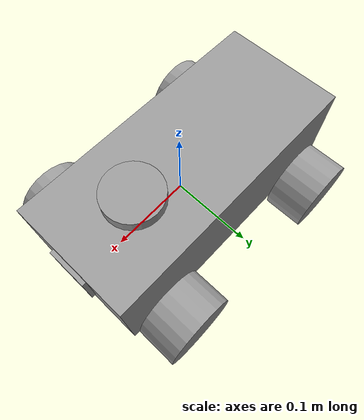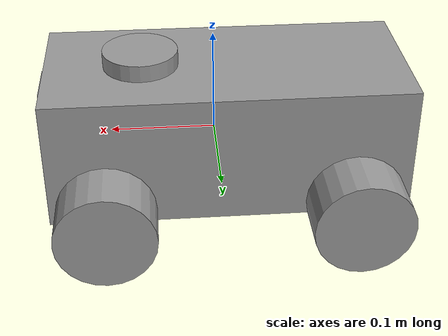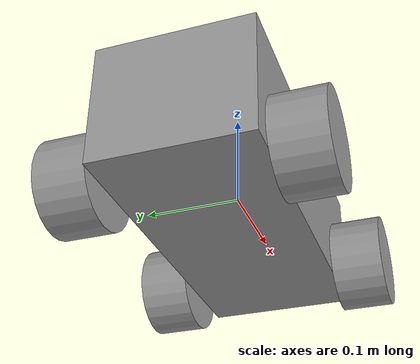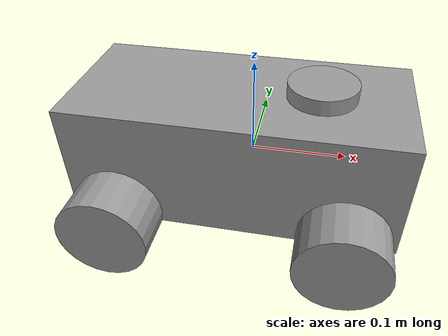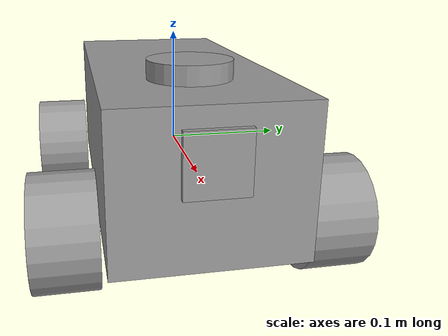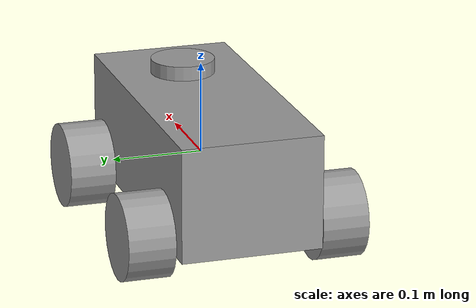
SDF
<?xml version='1.0'?>
<sdf version='1.7'>
  <model name='ucar_02'>
    <link name='link_0'>
      <inertial>
        <mass>8</mass>
        <inertia>
          <ixx>0.0262273</ixx>
          <ixy>0</ixy>
          <ixz>0</ixz>
          <iyy>0.0883927</iyy>
          <iyz>0</iyz>
          <izz>0.0937867</izz>
        </inertia>
        <pose>0 0 0 0 -0 0</pose>
      </inertial>
      <pose>-0.011375 -1.9e-05 0.007684 0 -0 0</pose>
      <gravity>1</gravity>
      <self_collide>0</self_collide>
      <kinematic>0</kinematic>
      <enable_wind>0</enable_wind>
      <visual name='visual'>
        <pose>0 0 0 0 -0 0</pose>
        <geometry>
          <box>
            <size>0.342 0.154 0.125</size>
          </box>
        </geometry>
        <material>
          <lighting>1</lighting>
          <script>
            <uri>file://media/materials/scripts/gazebo.material</uri>
            <name>Gazebo/Grey</name>
          </script>
          <shader type='pixel'>
            <normal_map>__default__</normal_map>
          </shader>
          <ambient>0.3 0.3 0.3 1</ambient>
          <diffuse>0.7 0.7 0.7 1</diffuse>
          <specular>0.01 0.01 0.01 1</specular>
          <emissive>0 0 0 1</emissive>
        </material>
        <transparency>0</transparency>
        <cast_shadows>1</cast_shadows>
      </visual>
      <collision name='collision'>
        <laser_retro>0</laser_retro>
        <max_contacts>10</max_contacts>
        <pose>0 0 0 0 -0 0</pose>
        <geometry>
          <box>
            <size>0.342 0.154 0.125</size>
          </box>
        </geometry>
        <surface>
          <friction>
            <ode>
              <mu>1</mu>
              <mu2>1</mu2>
              <fdir1>0 0 0</fdir1>
              <slip1>0</slip1>
              <slip2>0</slip2>
            </ode>
            <torsional>
              <coefficient>1</coefficient>
              <patch_radius>0</patch_radius>
              <surface_radius>0</surface_radius>
              <use_patch_radius>1</use_patch_radius>
              <ode>
                <slip>0</slip>
              </ode>
            </torsional>
          </friction>
          <bounce>
            <restitution_coefficient>0</restitution_coefficient>
            <threshold>1e+06</threshold>
          </bounce>
          <contact>
            <collide_without_contact>0</collide_without_contact>
            <collide_without_contact_bitmask>1</collide_without_contact_bitmask>
            <collide_bitmask>1</collide_bitmask>
            <ode>
              <soft_cfm>0</soft_cfm>
              <soft_erp>0.2</soft_erp>
              <kp>1e+13</kp>
              <kd>1</kd>
              <max_vel>0.01</max_vel>
              <min_depth>0</min_depth>
            </ode>
            <bullet>
              <split_impulse>1</split_impulse>
              <split_impulse_penetration_threshold>-0.01</split_impulse_penetration_threshold>
              <soft_cfm>0</soft_cfm>
              <soft_erp>0.2</soft_erp>
              <kp>1e+13</kp>
              <kd>1</kd>
            </bullet>
          </contact>
        </surface>
      </collision>
    </link>
    <link name='link_1'>
      <inertial>
        <mass>0.5</mass>
        <inertia>
          <ixx>0.0003845</ixx>
          <ixy>0</ixy>
          <ixz>0</ixz>
          <iyy>0.0003845</iyy>
          <iyz>0</iyz>
          <izz>0.00055225</izz>
        </inertia>
        <pose>0 0 0 0 -0 0</pose>
      </inertial>
      <pose>-0.128375 0.105981 -0.038816 0 -0 0</pose>
      <gravity>1</gravity>
      <self_collide>0</self_collide>
      <kinematic>0</kinematic>
      <enable_wind>0</enable_wind>
      <visual name='visual'>
        <pose>0 0 0 1.5709 -0 0</pose>
        <geometry>
          <cylinder>
            <radius>0.047</radius>
            <length>0.051</length>
          </cylinder>
        </geometry>
        <material>
          <lighting>1</lighting>
          <script>
            <uri>file://media/materials/scripts/gazebo.material</uri>
            <name>Gazebo/Grey</name>
          </script>
          <shader type='pixel'>
            <normal_map>__default__</normal_map>
          </shader>
          <ambient>0.3 0.3 0.3 1</ambient>
          <diffuse>0.7 0.7 0.7 1</diffuse>
          <specular>0.01 0.01 0.01 1</specular>
          <emissive>0 0 0 1</emissive>
        </material>
        <transparency>0</transparency>
        <cast_shadows>1</cast_shadows>
      </visual>
      <collision name='collision'>
        <laser_retro>0</laser_retro>
        <max_contacts>10</max_contacts>
        <pose>0 0 0 1.5709 -0 0</pose>
        <geometry>
          <cylinder>
            <radius>0.047</radius>
            <length>0.051</length>
          </cylinder>
        </geometry>
        <surface>
          <friction>
            <ode>
              <mu>1</mu>
              <mu2>1</mu2>
              <fdir1>0 0 0</fdir1>
              <slip1>0</slip1>
              <slip2>0</slip2>
            </ode>
            <torsional>
              <coefficient>1</coefficient>
              <patch_radius>0</patch_radius>
              <surface_radius>0</surface_radius>
              <use_patch_radius>1</use_patch_radius>
              <ode>
                <slip>0</slip>
              </ode>
            </torsional>
          </friction>
          <bounce>
            <restitution_coefficient>0</restitution_coefficient>
            <threshold>1e+06</threshold>
          </bounce>
          <contact>
            <collide_without_contact>0</collide_without_contact>
            <collide_without_contact_bitmask>1</collide_without_contact_bitmask>
            <collide_bitmask>1</collide_bitmask>
            <ode>
              <soft_cfm>0</soft_cfm>
              <soft_erp>0.2</soft_erp>
              <kp>1e+13</kp>
              <kd>1</kd>
              <max_vel>0.01</max_vel>
              <min_depth>0</min_depth>
            </ode>
            <bullet>
              <split_impulse>1</split_impulse>
              <split_impulse_penetration_threshold>-0.01</split_impulse_penetration_threshold>
              <soft_cfm>0</soft_cfm>
              <soft_erp>0.2</soft_erp>
              <kp>1e+13</kp>
              <kd>1</kd>
            </bullet>
          </contact>
        </surface>
      </collision>
    </link>
    <link name='link_1_clone'>
      <inertial>
        <mass>0.5</mass>
        <inertia>
          <ixx>0.0003845</ixx>
          <ixy>0</ixy>
          <ixz>0</ixz>
          <iyy>0.0003845</iyy>
          <iyz>0</iyz>
          <izz>0.00055225</izz>
        </inertia>
        <pose>0 0 0 0 -0 0</pose>
      </inertial>
      <pose>0.105625 0.105981 -0.038816 0 -0 0</pose>
      <gravity>1</gravity>
      <self_collide>0</self_collide>
      <kinematic>0</kinematic>
      <enable_wind>0</enable_wind>
      <visual name='visual'>
        <pose>0 0 0 1.5709 -0 0</pose>
        <geometry>
          <cylinder>
            <radius>0.047</radius>
            <length>0.051</length>
          </cylinder>
        </geometry>
        <material>
          <lighting>1</lighting>
          <script>
            <uri>file://media/materials/scripts/gazebo.material</uri>
            <name>Gazebo/Grey</name>
          </script>
          <shader type='pixel'>
            <normal_map>__default__</normal_map>
          </shader>
          <ambient>0.3 0.3 0.3 1</ambient>
          <diffuse>0.7 0.7 0.7 1</diffuse>
          <specular>0.01 0.01 0.01 1</specular>
          <emissive>0 0 0 1</emissive>
        </material>
        <transparency>0</transparency>
        <cast_shadows>1</cast_shadows>
      </visual>
      <collision name='collision'>
        <laser_retro>0</laser_retro>
        <max_contacts>10</max_contacts>
        <pose>0 0 0 1.5709 -0 0</pose>
        <geometry>
          <cylinder>
            <radius>0.047</radius>
            <length>0.051</length>
          </cylinder>
        </geometry>
        <surface>
          <friction>
            <ode>
              <mu>1</mu>
              <mu2>1</mu2>
              <fdir1>0 0 0</fdir1>
              <slip1>0</slip1>
              <slip2>0</slip2>
            </ode>
            <torsional>
              <coefficient>1</coefficient>
              <patch_radius>0</patch_radius>
              <surface_radius>0</surface_radius>
              <use_patch_radius>1</use_patch_radius>
              <ode>
                <slip>0</slip>
              </ode>
            </torsional>
          </friction>
          <bounce>
            <restitution_coefficient>0</restitution_coefficient>
            <threshold>1e+06</threshold>
          </bounce>
          <contact>
            <collide_without_contact>0</collide_without_contact>
            <collide_without_contact_bitmask>1</collide_without_contact_bitmask>
            <collide_bitmask>1</collide_bitmask>
            <ode>
              <soft_cfm>0</soft_cfm>
              <soft_erp>0.2</soft_erp>
              <kp>1e+13</kp>
              <kd>1</kd>
              <max_vel>0.01</max_vel>
              <min_depth>0</min_depth>
            </ode>
            <bullet>
              <split_impulse>1</split_impulse>
              <split_impulse_penetration_threshold>-0.01</split_impulse_penetration_threshold>
              <soft_cfm>0</soft_cfm>
              <soft_erp>0.2</soft_erp>
              <kp>1e+13</kp>
              <kd>1</kd>
            </bullet>
          </contact>
        </surface>
      </collision>
    </link>
    <link name='link_1_clone_0'>
      <inertial>
        <mass>0.5</mass>
        <inertia>
          <ixx>0.0003845</ixx>
          <ixy>0</ixy>
          <ixz>0</ixz>
          <iyy>0.0003845</iyy>
          <iyz>0</iyz>
          <izz>0.00055225</izz>
        </inertia>
        <pose>0 0 0 0 -0 0</pose>
      </inertial>
      <pose>0.105625 -0.106018 -0.038816 0 -0 0</pose>
      <gravity>1</gravity>
      <self_collide>0</self_collide>
      <kinematic>0</kinematic>
      <enable_wind>0</enable_wind>
      <visual name='visual'>
        <pose>0 0 0 1.5709 -0 0</pose>
        <geometry>
          <cylinder>
            <radius>0.047</radius>
            <length>0.051</length>
          </cylinder>
        </geometry>
        <material>
          <lighting>1</lighting>
          <script>
            <uri>file://media/materials/scripts/gazebo.material</uri>
            <name>Gazebo/Grey</name>
          </script>
          <shader type='pixel'>
            <normal_map>__default__</normal_map>
          </shader>
          <ambient>0.3 0.3 0.3 1</ambient>
          <diffuse>0.7 0.7 0.7 1</diffuse>
          <specular>0.01 0.01 0.01 1</specular>
          <emissive>0 0 0 1</emissive>
        </material>
        <transparency>0</transparency>
        <cast_shadows>1</cast_shadows>
      </visual>
      <collision name='collision'>
        <laser_retro>0</laser_retro>
        <max_contacts>10</max_contacts>
        <pose>0 0 0 1.5709 -0 0</pose>
        <geometry>
          <cylinder>
            <radius>0.047</radius>
            <length>0.051</length>
          </cylinder>
        </geometry>
        <surface>
          <friction>
            <ode>
              <mu>1</mu>
              <mu2>1</mu2>
              <fdir1>0 0 0</fdir1>
              <slip1>0</slip1>
              <slip2>0</slip2>
            </ode>
            <torsional>
              <coefficient>1</coefficient>
              <patch_radius>0</patch_radius>
              <surface_radius>0</surface_radius>
              <use_patch_radius>1</use_patch_radius>
              <ode>
                <slip>0</slip>
              </ode>
            </torsional>
          </friction>
          <bounce>
            <restitution_coefficient>0</restitution_coefficient>
            <threshold>1e+06</threshold>
          </bounce>
          <contact>
            <collide_without_contact>0</collide_without_contact>
            <collide_without_contact_bitmask>1</collide_without_contact_bitmask>
            <collide_bitmask>1</collide_bitmask>
            <ode>
              <soft_cfm>0</soft_cfm>
              <soft_erp>0.2</soft_erp>
              <kp>1e+13</kp>
              <kd>1</kd>
              <max_vel>0.01</max_vel>
              <min_depth>0</min_depth>
            </ode>
            <bullet>
              <split_impulse>1</split_impulse>
              <split_impulse_penetration_threshold>-0.01</split_impulse_penetration_threshold>
              <soft_cfm>0</soft_cfm>
              <soft_erp>0.2</soft_erp>
              <kp>1e+13</kp>
              <kd>1</kd>
            </bullet>
          </contact>
        </surface>
      </collision>
    </link>
    <link name='link_1_clone_1'>
      <inertial>
        <mass>0.5</mass>
        <inertia>
          <ixx>0.0003845</ixx>
          <ixy>0</ixy>
          <ixz>0</ixz>
          <iyy>0.0003845</iyy>
          <iyz>0</iyz>
          <izz>0.00055225</izz>
        </inertia>
        <pose>0 0 0 0 -0 0</pose>
      </inertial>
      <pose>-0.128375 -0.106018 -0.038816 0 -0 0</pose>
      <gravity>1</gravity>
      <self_collide>0</self_collide>
      <kinematic>0</kinematic>
      <enable_wind>0</enable_wind>
      <visual name='visual'>
        <pose>0 0 0 1.5709 -0 0</pose>
        <geometry>
          <cylinder>
            <radius>0.047</radius>
            <length>0.051</length>
          </cylinder>
        </geometry>
        <material>
          <lighting>1</lighting>
          <script>
            <uri>file://media/materials/scripts/gazebo.material</uri>
            <name>Gazebo/Grey</name>
          </script>
          <shader type='pixel'>
            <normal_map>__default__</normal_map>
          </shader>
          <ambient>0.3 0.3 0.3 1</ambient>
          <diffuse>0.7 0.7 0.7 1</diffuse>
          <specular>0.01 0.01 0.01 1</specular>
          <emissive>0 0 0 1</emissive>
        </material>
        <transparency>0</transparency>
        <cast_shadows>1</cast_shadows>
      </visual>
      <collision name='collision'>
        <laser_retro>0</laser_retro>
        <max_contacts>10</max_contacts>
        <pose>0 0 0 1.5709 -0 0</pose>
        <geometry>
          <cylinder>
            <radius>0.047</radius>
            <length>0.051</length>
          </cylinder>
        </geometry>
        <surface>
          <friction>
            <ode>
              <mu>1</mu>
              <mu2>1</mu2>
              <fdir1>0 0 0</fdir1>
              <slip1>0</slip1>
              <slip2>0</slip2>
            </ode>
            <torsional>
              <coefficient>1</coefficient>
              <patch_radius>0</patch_radius>
              <surface_radius>0</surface_radius>
              <use_patch_radius>1</use_patch_radius>
              <ode>
                <slip>0</slip>
              </ode>
            </torsional>
          </friction>
          <bounce>
            <restitution_coefficient>0</restitution_coefficient>
            <threshold>1e+06</threshold>
          </bounce>
          <contact>
            <collide_without_contact>0</collide_without_contact>
            <collide_without_contact_bitmask>1</collide_without_contact_bitmask>
            <collide_bitmask>1</collide_bitmask>
            <ode>
              <soft_cfm>0</soft_cfm>
              <soft_erp>0.2</soft_erp>
              <kp>1e+13</kp>
              <kd>1</kd>
              <max_vel>0.01</max_vel>
              <min_depth>0</min_depth>
            </ode>
            <bullet>
              <split_impulse>1</split_impulse>
              <split_impulse_penetration_threshold>-0.01</split_impulse_penetration_threshold>
              <soft_cfm>0</soft_cfm>
              <soft_erp>0.2</soft_erp>
              <kp>1e+13</kp>
              <kd>1</kd>
            </bullet>
          </contact>
        </surface>
      </collision>
    </link>
    <link name='link_2'>
      <sensor type="gpu_ray" name="my_laser">
        <pose>0 0 0 0 0 0</pose>
        <visualize>true</visualize>
        <update_rate>40</update_rate>
        <ray>
          <scan>
            <horizontal>
              <samples>720</samples>
              <resolution>1</resolution>
              <min_angle>-3.14</min_angle>
              <max_angle>3.14</max_angle>
            </horizontal>
          </scan>
          <range>
            <min>0.04</min>
            <max>16.0</max>
            <resolution>0.01</resolution>
          </range>
          <noise>
            <gaussian>
              <mean>0.0</mean>
              <stddev>0.01</stddev>
            </gaussian>
          </noise>
        </ray>
        <plugin name="gpu_laser_controller" filename="libgazebo_ros_gpu_laser.so">
          <updateRate>40</updateRate>
          <visualize>true</visualize>
          <publishFrequency>40</publishFrequency>
          <frameName>link_2</frameName>
          <topicName>/scan</topicName>
          <fieldName>scan</fieldName>
        </plugin>
      </sensor>
      <inertial>
        <mass>0.0744328</mass>
        <inertia>
          <ixx>2.504e-05</ixx>
          <ixy>0</ixy>
          <ixz>0</ixz>
          <iyy>2.504e-05</iyy>
          <iyz>0</iyz>
          <izz>4.69e-05</izz>
        </inertia>
        <pose>0 0 0 0 -0 0</pose>
      </inertial>
      <pose>0.068625 0.00013 0.078184 0 -0 0</pose>
      <gravity>1</gravity>
      <self_collide>0</self_collide>
      <kinematic>0</kinematic>
      <enable_wind>0</enable_wind>
      <visual name='visual'>
        <pose>0 0 0 0 -0 0</pose>
        <geometry>
          <cylinder>
            <radius>0.0355</radius>
            <length>0.016</length>
          </cylinder>
        </geometry>
        <material>
          <lighting>1</lighting>
          <script>
            <uri>file://media/materials/scripts/gazebo.material</uri>
            <name>Gazebo/Grey</name>
          </script>
          <shader type='pixel'>
            <normal_map>__default__</normal_map>
          </shader>
          <ambient>0.3 0.3 0.3 1</ambient>
          <diffuse>0.7 0.7 0.7 1</diffuse>
          <specular>0.01 0.01 0.01 1</specular>
          <emissive>0 0 0 1</emissive>
        </material>
        <transparency>0</transparency>
        <cast_shadows>1</cast_shadows>
      </visual>
      <collision name='collision'>
        <laser_retro>0</laser_retro>
        <max_contacts>10</max_contacts>
        <pose>0 0 0 0 -0 0</pose>
        <geometry>
          <cylinder>
            <radius>0.0355</radius>
            <length>0.016</length>
          </cylinder>
        </geometry>
        <surface>
          <friction>
            <ode>
              <mu>1</mu>
              <mu2>1</mu2>
              <fdir1>0 0 0</fdir1>
              <slip1>0</slip1>
              <slip2>0</slip2>
            </ode>
            <torsional>
              <coefficient>1</coefficient>
              <patch_radius>0</patch_radius>
              <surface_radius>0</surface_radius>
              <use_patch_radius>1</use_patch_radius>
              <ode>
                <slip>0</slip>
              </ode>
            </torsional>
          </friction>
          <bounce>
            <restitution_coefficient>0</restitution_coefficient>
            <threshold>1e+06</threshold>
          </bounce>
          <contact>
            <collide_without_contact>0</collide_without_contact>
            <collide_without_contact_bitmask>1</collide_without_contact_bitmask>
            <collide_bitmask>1</collide_bitmask>
            <ode>
              <soft_cfm>0</soft_cfm>
              <soft_erp>0.2</soft_erp>
              <kp>1e+13</kp>
              <kd>1</kd>
              <max_vel>0.01</max_vel>
              <min_depth>0</min_depth>
            </ode>
            <bullet>
              <split_impulse>1</split_impulse>
              <split_impulse_penetration_threshold>-0.01</split_impulse_penetration_threshold>
              <soft_cfm>0</soft_cfm>
              <soft_erp>0.2</soft_erp>
              <kp>1e+13</kp>
              <kd>1</kd>
            </bullet>
          </contact>
        </surface>
      </collision>
    </link>
    <link name='link_3'>
      <inertial>
        <mass>0.001</mass>
        <inertia>
          <ixx>4.2e-07</ixx>
          <ixy>0</ixy>
          <ixz>0</ixz>
          <iyy>4.2e-07</iyy>
          <iyz>0</iyz>
          <izz>4.2e-07</izz>
        </inertia>
        <pose>0 0 0 0 -0 0</pose>
      </inertial>
      <pose>-0.151326 -1.9e-05 0.040213 0 -0 0</pose>
      <gravity>1</gravity>
      <self_collide>0</self_collide>
      <kinematic>0</kinematic>
      <enable_wind>0</enable_wind>
      <visual name='visual'>
        <pose>0 0 0 0 -0 0</pose>
        <geometry>
          <box>
            <size>0.05 0.05 0.05</size>
          </box>
        </geometry>
        <material>
          <lighting>1</lighting>
          <script>
            <uri>file://media/materials/scripts/gazebo.material</uri>
            <name>Gazebo/Grey</name>
          </script>
          <shader type='pixel'>
            <normal_map>__default__</normal_map>
          </shader>
          <ambient>0.3 0.3 0.3 1</ambient>
          <diffuse>0.7 0.7 0.7 1</diffuse>
          <specular>0.01 0.01 0.01 1</specular>
          <emissive>0 0 0 1</emissive>
        </material>
        <transparency>0</transparency>
        <cast_shadows>1</cast_shadows>
      </visual>
      <collision name='collision'>
        <laser_retro>0</laser_retro>
        <max_contacts>10</max_contacts>
        <pose>0 0 0 0 -0 0</pose>
        <geometry>
          <box>
            <size>0.05 0.05 0.05</size>
          </box>
        </geometry>
        <surface>
          <friction>
            <ode>
              <mu>1</mu>
              <mu2>1</mu2>
              <fdir1>0 0 0</fdir1>
              <slip1>0</slip1>
              <slip2>0</slip2>
            </ode>
            <torsional>
              <coefficient>1</coefficient>
              <patch_radius>0</patch_radius>
              <surface_radius>0</surface_radius>
              <use_patch_radius>1</use_patch_radius>
              <ode>
                <slip>0</slip>
              </ode>
            </torsional>
          </friction>
          <bounce>
            <restitution_coefficient>0</restitution_coefficient>
            <threshold>1e+06</threshold>
          </bounce>
          <contact>
            <collide_without_contact>0</collide_without_contact>
            <collide_without_contact_bitmask>1</collide_without_contact_bitmask>
            <collide_bitmask>1</collide_bitmask>
            <ode>
              <soft_cfm>0</soft_cfm>
              <soft_erp>0.2</soft_erp>
              <kp>1e+13</kp>
              <kd>1</kd>
              <max_vel>0.01</max_vel>
              <min_depth>0</min_depth>
            </ode>
            <bullet>
              <split_impulse>1</split_impulse>
              <split_impulse_penetration_threshold>-0.01</split_impulse_penetration_threshold>
              <soft_cfm>0</soft_cfm>
              <soft_erp>0.2</soft_erp>
              <kp>1e+13</kp>
              <kd>1</kd>
            </bullet>
          </contact>
        </surface>
      </collision>
    </link>
    <link name='link_4'>
      <inertial>
        <mass>0.001</mass>
        <inertia>
          <ixx>4.2e-07</ixx>
          <ixy>0</ixy>
          <ixz>0</ixz>
          <iyy>4.2e-07</iyy>
          <iyz>0</iyz>
          <izz>4.2e-07</izz>
        </inertia>
        <pose>0 0 0 0 -0 0</pose>
      </inertial>
      <pose>0.139578 -1.9e-05 0.029184 0 -0 0</pose>
      <gravity>1</gravity>
      <self_collide>0</self_collide>
      <kinematic>0</kinematic>
      <enable_wind>0</enable_wind>
      <visual name='visual'>
        <pose>0 0 0 0 -0 0</pose>
        <geometry>
          <box>
            <size>0.05 0.05 0.05</size>
          </box>
        </geometry>
        <material>
          <lighting>1</lighting>
          <script>
            <uri>file://media/materials/scripts/gazebo.material</uri>
            <name>Gazebo/Grey</name>
          </script>
          <shader type='pixel'>
            <normal_map>__default__</normal_map>
          </shader>
          <ambient>0.3 0.3 0.3 1</ambient>
          <diffuse>0.7 0.7 0.7 1</diffuse>
          <specular>0.01 0.01 0.01 1</specular>
          <emissive>0 0 0 1</emissive>
        </material>
        <transparency>0</transparency>
        <cast_shadows>1</cast_shadows>
      </visual>
      <collision name='collision'>
        <laser_retro>0</laser_retro>
        <max_contacts>10</max_contacts>
        <pose>0 0 0 0 -0 0</pose>
        <geometry>
          <box>
            <size>0.05 0.05 0.05</size>
          </box>
        </geometry>
        <surface>
          <friction>
            <ode>
              <mu>1</mu>
              <mu2>1</mu2>
              <fdir1>0 0 0</fdir1>
              <slip1>0</slip1>
              <slip2>0</slip2>
            </ode>
            <torsional>
              <coefficient>1</coefficient>
              <patch_radius>0</patch_radius>
              <surface_radius>0</surface_radius>
              <use_patch_radius>1</use_patch_radius>
              <ode>
                <slip>0</slip>
              </ode>
            </torsional>
          </friction>
          <bounce>
            <restitution_coefficient>0</restitution_coefficient>
            <threshold>1e+06</threshold>
          </bounce>
          <contact>
            <collide_without_contact>0</collide_without_contact>
            <collide_without_contact_bitmask>1</collide_without_contact_bitmask>
            <collide_bitmask>1</collide_bitmask>
            <ode>
              <soft_cfm>0</soft_cfm>
              <soft_erp>0.2</soft_erp>
              <kp>1e+13</kp>
              <kd>1</kd>
              <max_vel>0.01</max_vel>
              <min_depth>0</min_depth>
            </ode>
            <bullet>
              <split_impulse>1</split_impulse>
              <split_impulse_penetration_threshold>-0.01</split_impulse_penetration_threshold>
              <soft_cfm>0</soft_cfm>
              <soft_erp>0.2</soft_erp>
              <kp>1e+13</kp>
              <kd>1</kd>
            </bullet>
          </contact>
        </surface>
      </collision>
    </link>
    <joint name='link_0_JOINT_10' type='fixed'>
      <parent>link_0</parent>
      <child>link_2</child>
      <pose>0 0 0 0 -0 0</pose>
      <physics>
        <ode>
          <limit>
            <cfm>0</cfm>
            <erp>0.2</erp>
          </limit>
          <suspension>
            <cfm>0</cfm>
            <erp>0.2</erp>
          </suspension>
        </ode>
      </physics>
    </joint>
    <joint name='link_0_JOINT_12' type='fixed'>
      <parent>link_0</parent>
      <child>link_3</child>
      <pose>0 0 0 0 -0 0</pose>
      <physics>
        <ode>
          <limit>
            <cfm>0</cfm>
            <erp>0.2</erp>
          </limit>
          <suspension>
            <cfm>0</cfm>
            <erp>0.2</erp>
          </suspension>
        </ode>
      </physics>
    </joint>
    <joint name='link_0_JOINT_13' type='fixed'>
      <parent>link_0</parent>
      <child>link_4</child>
      <pose>0 0 0 0 -0 0</pose>
      <physics>
        <ode>
          <limit>
            <cfm>0</cfm>
            <erp>0.2</erp>
          </limit>
          <suspension>
            <cfm>0</cfm>
            <erp>0.2</erp>
          </suspension>
        </ode>
      </physics>
    </joint>
    <joint name='link_0_JOINT_3' type='revolute'>
      <parent>link_0</parent>
      <child>link_1_clone</child>
      <pose>0 0 0 0 -0 0</pose>
      <axis>
        <xyz>0 1 0</xyz>
        <limit>
          <lower>-1.79769e+308</lower>
          <upper>1.79769e+308</upper>
          <effort>-1</effort>
          <velocity>-1</velocity>
        </limit>
        <dynamics>
          <spring_reference>0</spring_reference>
          <spring_stiffness>0</spring_stiffness>
          <damping>0</damping>
          <friction>0</friction>
        </dynamics>
      </axis>
      <physics>
        <ode>
          <limit>
            <cfm>0</cfm>
            <erp>0.2</erp>
          </limit>
          <suspension>
            <cfm>0</cfm>
            <erp>0.2</erp>
          </suspension>
        </ode>
      </physics>
    </joint>
    <joint name='link_0_JOINT_4' type='revolute'>
      <parent>link_0</parent>
      <child>link_1_clone_0</child>
      <pose>0 0 0 0 -0 0</pose>
      <axis>
        <xyz>0 -1 0</xyz>
        <limit>
          <lower>-1.79769e+308</lower>
          <upper>1.79769e+308</upper>
          <effort>-1</effort>
          <velocity>-1</velocity>
        </limit>
        <dynamics>
          <spring_reference>0</spring_reference>
          <spring_stiffness>0</spring_stiffness>
          <damping>0</damping>
          <friction>0</friction>
        </dynamics>
      </axis>
      <physics>
        <ode>
          <limit>
            <cfm>0</cfm>
            <erp>0.2</erp>
          </limit>
          <suspension>
            <cfm>0</cfm>
            <erp>0.2</erp>
          </suspension>
        </ode>
      </physics>
    </joint>
    <joint name='link_0_JOINT_5' type='revolute'>
      <parent>link_0</parent>
      <child>link_1_clone_1</child>
      <pose>0 0 0 0 -0 0</pose>
      <axis>
        <xyz>0 -1 0</xyz>
        <limit>
          <lower>-1.79769e+308</lower>
          <upper>1.79769e+308</upper>
          <effort>-1</effort>
          <velocity>-1</velocity>
        </limit>
        <dynamics>
          <spring_reference>0</spring_reference>
          <spring_stiffness>0</spring_stiffness>
          <damping>0</damping>
          <friction>0</friction>
        </dynamics>
      </axis>
      <physics>
        <ode>
          <limit>
            <cfm>0</cfm>
            <erp>0.2</erp>
          </limit>
          <suspension>
            <cfm>0</cfm>
            <erp>0.2</erp>
          </suspension>
        </ode>
      </physics>
    </joint>
    <joint name='link_1_JOINT_7' type='revolute'>
      <parent>link_0</parent>
      <child>link_1</child>
      <pose>0 0 0 0 -0 0</pose>
      <axis>
        <xyz>0 1 0</xyz>
        <limit>
          <lower>-1.79769e+308</lower>
          <upper>1.79769e+308</upper>
          <effort>-1</effort>
          <velocity>-1</velocity>
        </limit>
        <dynamics>
          <spring_reference>0</spring_reference>
          <spring_stiffness>0</spring_stiffness>
          <damping>0</damping>
          <friction>0</friction>
        </dynamics>
      </axis>
      <physics>
        <ode>
          <limit>
            <cfm>0</cfm>
            <erp>0.2</erp>
          </limit>
          <suspension>
            <cfm>0</cfm>
            <erp>0.2</erp>
          </suspension>
        </ode>
      </physics>
    </joint>
    <static>0</static>
    <allow_auto_disable>1</allow_auto_disable>
    <plugin name='imu_controller' filename='libgazebo_ros_imu_sensor.so'/>
    <plugin name='mecanum_controller' filename='libgazebo_ros_planar_move.so'/>

        <sensor name='camera1' type='camera'>
          <update_rate>30</update_rate>
          <camera name='head'>
            <horizontal_fov>1.39626</horizontal_fov>
            <image>
              <width>1920</width>
              <height>1080</height>
              <format>R8G8B8</format>
            </image>
            <clip>
              <near>0.02</near>
              <far>300</far>
            </clip>
            <noise>
              <type>gaussian</type>
              <mean>0</mean>
              <stddev>0.007</stddev>
            </noise>
          </camera>
          <plugin name='camera_controller' filename='libgazebo_ros_camera.so'>
            <alwaysOn>1</alwaysOn>
            <updateRate>0.0</updateRate>
            <cameraName>/</cameraName>
            <imageTopicName>cam</imageTopicName>
            <cameraInfoTopicName>camera_info</cameraInfoTopicName>
            <frameName>link_4</frameName>
            <hackBaseline>0.07</hackBaseline>
            <distortionK1>0.0</distortionK1>
            <distortionK2>0.0</distortionK2>
            <distortionK3>0.0</distortionK3>
            <distortionT1>0.0</distortionT1>
            <distortionT2>0.0</distortionT2>
            <robotNamespace>/</robotNamespace>
          </plugin>
          <pose>0.171 0 0.126 0 -0 0</pose>
        </sensor>

  </model>
</sdf>
